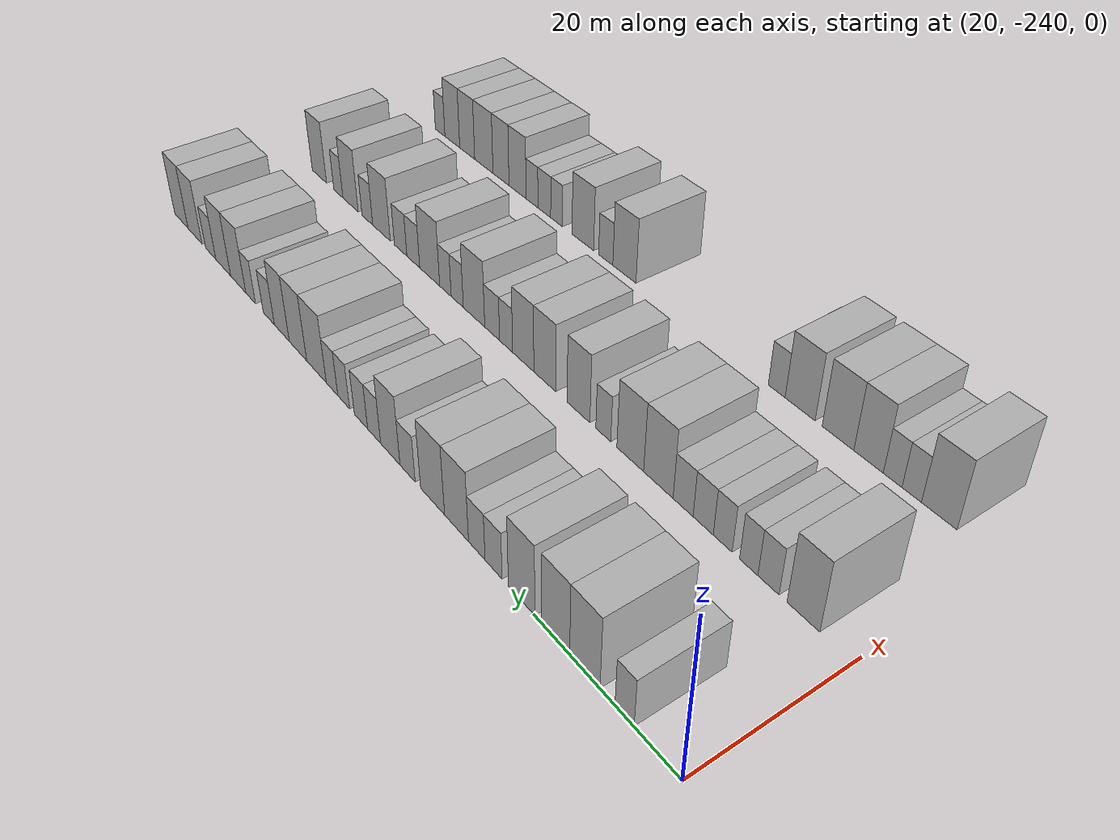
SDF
<sdf version="1.6">
 <world name="default">
  <model name="building_1">
   <static>1</static>
   <pose>25.0000 -232.7464 0 0.000000 0.000000 0.000000</pose>
   <link name="link">
    <pose>0 0 3.00 0 0 0</pose>
    <collision name="collision"><geometry><box><size>10.0000 2.5072 6.0000</size></box></geometry></collision>
    <visual name="visual">
     <cast_shadows>0</cast_shadows>
     <geometry><box><size>10.0000 2.5072 6.0000</size></box></geometry>
     <material>
      <script>
       <uri>model://HANNAS_wall/materials/scripts</uri>
       <uri>model://HANNAS_wall/materials/textures</uri>
       <name>vrc/HANNAS_wall</name>
      </script>
     </material>
    </visual>
   </link>
  </model>
  <model name="building_2">
   <static>1</static>
   <pose>25.0000 -227.3734 0 0.000000 0.000000 0.000000</pose>
   <link name="link">
    <pose>0 0 4.50 0 0 0</pose>
    <collision name="collision"><geometry><box><size>10.0000 4.2387 9.0000</size></box></geometry></collision>
    <visual name="visual">
     <cast_shadows>0</cast_shadows>
     <geometry><box><size>10.0000 4.2387 9.0000</size></box></geometry>
     <material>
      <script>
       <uri>model://HANNAS_wall/materials/scripts</uri>
       <uri>model://HANNAS_wall/materials/textures</uri>
       <name>vrc/HANNAS_wall</name>
      </script>
     </material>
    </visual>
   </link>
  </model>
  <model name="building_3">
   <static>1</static>
   <pose>25.0000 -223.1973 0 0.000000 0.000000 0.000000</pose>
   <link name="link">
    <pose>0 0 4.50 0 0 0</pose>
    <collision name="collision"><geometry><box><size>10.0000 4.1135 9.0000</size></box></geometry></collision>
    <visual name="visual">
     <cast_shadows>0</cast_shadows>
     <geometry><box><size>10.0000 4.1135 9.0000</size></box></geometry>
     <material>
      <script>
       <uri>model://HANNAS_wall/materials/scripts</uri>
       <uri>model://HANNAS_wall/materials/textures</uri>
       <name>vrc/HANNAS_wall</name>
      </script>
     </material>
    </visual>
   </link>
  </model>
  <model name="building_4">
   <static>1</static>
   <pose>25.0000 -218.0938 0 0.000000 0.000000 0.000000</pose>
   <link name="link">
    <pose>0 0 4.50 0 0 0</pose>
    <collision name="collision"><geometry><box><size>10.0000 4.0936 9.0000</size></box></geometry></collision>
    <visual name="visual">
     <cast_shadows>0</cast_shadows>
     <geometry><box><size>10.0000 4.0936 9.0000</size></box></geometry>
     <material>
      <script>
       <uri>model://HANNAS_wall/materials/scripts</uri>
       <uri>model://HANNAS_wall/materials/textures</uri>
       <name>vrc/HANNAS_wall</name>
      </script>
     </material>
    </visual>
   </link>
  </model>
  <model name="building_5">
   <static>1</static>
   <pose>25.0000 -213.6600 0 0.000000 0.000000 0.000000</pose>
   <link name="link">
    <pose>0 0 3.00 0 0 0</pose>
    <collision name="collision"><geometry><box><size>10.0000 2.7739 6.0000</size></box></geometry></collision>
    <visual name="visual">
     <cast_shadows>0</cast_shadows>
     <geometry><box><size>10.0000 2.7739 6.0000</size></box></geometry>
     <material>
      <script>
       <uri>model://HANNAS_wall/materials/scripts</uri>
       <uri>model://HANNAS_wall/materials/textures</uri>
       <name>vrc/HANNAS_wall</name>
      </script>
     </material>
    </visual>
   </link>
  </model>
  <model name="building_6">
   <static>1</static>
   <pose>25.0000 -210.8924 0 0.000000 0.000000 0.000000</pose>
   <link name="link">
    <pose>0 0 3.00 0 0 0</pose>
    <collision name="collision"><geometry><box><size>10.0000 2.7613 6.0000</size></box></geometry></collision>
    <visual name="visual">
     <cast_shadows>0</cast_shadows>
     <geometry><box><size>10.0000 2.7613 6.0000</size></box></geometry>
     <material>
      <script>
       <uri>model://HANNAS_wall/materials/scripts</uri>
       <uri>model://HANNAS_wall/materials/textures</uri>
       <name>vrc/HANNAS_wall</name>
      </script>
     </material>
    </visual>
   </link>
  </model>
  <model name="building_7">
   <static>1</static>
   <pose>25.0000 -207.4235 0 0.000000 0.000000 0.000000</pose>
   <link name="link">
    <pose>0 0 4.50 0 0 0</pose>
    <collision name="collision"><geometry><box><size>10.0000 4.1765 9.0000</size></box></geometry></collision>
    <visual name="visual">
     <cast_shadows>0</cast_shadows>
     <geometry><box><size>10.0000 4.1765 9.0000</size></box></geometry>
     <material>
      <script>
       <uri>model://HANNAS_wall/materials/scripts</uri>
       <uri>model://HANNAS_wall/materials/textures</uri>
       <name>vrc/HANNAS_wall</name>
      </script>
     </material>
    </visual>
   </link>
  </model>
  <model name="building_8">
   <static>1</static>
   <pose>25.0000 -203.1562 0 0.000000 0.000000 0.000000</pose>
   <link name="link">
    <pose>0 0 4.50 0 0 0</pose>
    <collision name="collision"><geometry><box><size>10.0000 4.3580 9.0000</size></box></geometry></collision>
    <visual name="visual">
     <cast_shadows>0</cast_shadows>
     <geometry><box><size>10.0000 4.3580 9.0000</size></box></geometry>
     <material>
      <script>
       <uri>model://HANNAS_wall/materials/scripts</uri>
       <uri>model://HANNAS_wall/materials/textures</uri>
       <name>vrc/HANNAS_wall</name>
      </script>
     </material>
    </visual>
   </link>
  </model>
  <model name="building_9">
   <static>1</static>
   <pose>25.0000 -198.5310 0 0.000000 0.000000 0.000000</pose>
   <link name="link">
    <pose>0 0 3.00 0 0 0</pose>
    <collision name="collision"><geometry><box><size>10.0000 2.8926 6.0000</size></box></geometry></collision>
    <visual name="visual">
     <cast_shadows>0</cast_shadows>
     <geometry><box><size>10.0000 2.8926 6.0000</size></box></geometry>
     <material>
      <script>
       <uri>model://HANNAS_wall/materials/scripts</uri>
       <uri>model://HANNAS_wall/materials/textures</uri>
       <name>vrc/HANNAS_wall</name>
      </script>
     </material>
    </visual>
   </link>
  </model>
  <model name="building_10">
   <static>1</static>
   <pose>25.0000 -195.1847 0 0.000000 0.000000 0.000000</pose>
   <link name="link">
    <pose>0 0 4.50 0 0 0</pose>
    <collision name="collision"><geometry><box><size>10.0000 3.8000 9.0000</size></box></geometry></collision>
    <visual name="visual">
     <cast_shadows>0</cast_shadows>
     <geometry><box><size>10.0000 3.8000 9.0000</size></box></geometry>
     <material>
      <script>
       <uri>model://HANNAS_wall/materials/scripts</uri>
       <uri>model://HANNAS_wall/materials/textures</uri>
       <name>vrc/HANNAS_wall</name>
      </script>
     </material>
    </visual>
   </link>
  </model>
  <model name="building_11">
   <static>1</static>
   <pose>25.0000 -191.9634 0 0.000000 0.000000 0.000000</pose>
   <link name="link">
    <pose>0 0 3.00 0 0 0</pose>
    <collision name="collision"><geometry><box><size>10.0000 2.6426 6.0000</size></box></geometry></collision>
    <visual name="visual">
     <cast_shadows>0</cast_shadows>
     <geometry><box><size>10.0000 2.6426 6.0000</size></box></geometry>
     <material>
      <script>
       <uri>model://HANNAS_wall/materials/scripts</uri>
       <uri>model://HANNAS_wall/materials/textures</uri>
       <name>vrc/HANNAS_wall</name>
      </script>
     </material>
    </visual>
   </link>
  </model>
  <model name="building_12">
   <static>1</static>
   <pose>25.0000 -189.2580 0 0.000000 0.000000 0.000000</pose>
   <link name="link">
    <pose>0 0 3.00 0 0 0</pose>
    <collision name="collision"><geometry><box><size>10.0000 2.7681 6.0000</size></box></geometry></collision>
    <visual name="visual">
     <cast_shadows>0</cast_shadows>
     <geometry><box><size>10.0000 2.7681 6.0000</size></box></geometry>
     <material>
      <script>
       <uri>model://HANNAS_wall/materials/scripts</uri>
       <uri>model://HANNAS_wall/materials/textures</uri>
       <name>vrc/HANNAS_wall</name>
      </script>
     </material>
    </visual>
   </link>
  </model>
  <model name="building_13">
   <static>1</static>
   <pose>25.0000 -185.5941 0 0.000000 0.000000 0.000000</pose>
   <link name="link">
    <pose>0 0 3.00 0 0 0</pose>
    <collision name="collision"><geometry><box><size>10.0000 2.5597 6.0000</size></box></geometry></collision>
    <visual name="visual">
     <cast_shadows>0</cast_shadows>
     <geometry><box><size>10.0000 2.5597 6.0000</size></box></geometry>
     <material>
      <script>
       <uri>model://HANNAS_wall/materials/scripts</uri>
       <uri>model://HANNAS_wall/materials/textures</uri>
       <name>vrc/HANNAS_wall</name>
      </script>
     </material>
    </visual>
   </link>
  </model>
  <model name="building_14">
   <static>1</static>
   <pose>25.0000 -183.0411 0 0.000000 0.000000 0.000000</pose>
   <link name="link">
    <pose>0 0 3.00 0 0 0</pose>
    <collision name="collision"><geometry><box><size>10.0000 2.5462 6.0000</size></box></geometry></collision>
    <visual name="visual">
     <cast_shadows>0</cast_shadows>
     <geometry><box><size>10.0000 2.5462 6.0000</size></box></geometry>
     <material>
      <script>
       <uri>model://HANNAS_wall/materials/scripts</uri>
       <uri>model://HANNAS_wall/materials/textures</uri>
       <name>vrc/HANNAS_wall</name>
      </script>
     </material>
    </visual>
   </link>
  </model>
  <model name="building_15">
   <static>1</static>
   <pose>25.0000 -179.5298 0 0.000000 0.000000 0.000000</pose>
   <link name="link">
    <pose>0 0 4.50 0 0 0</pose>
    <collision name="collision"><geometry><box><size>10.0000 4.4765 9.0000</size></box></geometry></collision>
    <visual name="visual">
     <cast_shadows>0</cast_shadows>
     <geometry><box><size>10.0000 4.4765 9.0000</size></box></geometry>
     <material>
      <script>
       <uri>model://HANNAS_wall/materials/scripts</uri>
       <uri>model://HANNAS_wall/materials/textures</uri>
       <name>vrc/HANNAS_wall</name>
      </script>
     </material>
    </visual>
   </link>
  </model>
  <model name="building_16">
   <static>1</static>
   <pose>25.0000 -175.2244 0 0.000000 0.000000 0.000000</pose>
   <link name="link">
    <pose>0 0 4.50 0 0 0</pose>
    <collision name="collision"><geometry><box><size>10.0000 4.1342 9.0000</size></box></geometry></collision>
    <visual name="visual">
     <cast_shadows>0</cast_shadows>
     <geometry><box><size>10.0000 4.1342 9.0000</size></box></geometry>
     <material>
      <script>
       <uri>model://HANNAS_wall/materials/scripts</uri>
       <uri>model://HANNAS_wall/materials/textures</uri>
       <name>vrc/HANNAS_wall</name>
      </script>
     </material>
    </visual>
   </link>
  </model>
  <model name="building_17">
   <static>1</static>
   <pose>25.0000 -171.3254 0 0.000000 0.000000 0.000000</pose>
   <link name="link">
    <pose>0 0 4.50 0 0 0</pose>
    <collision name="collision"><geometry><box><size>10.0000 3.6637 9.0000</size></box></geometry></collision>
    <visual name="visual">
     <cast_shadows>0</cast_shadows>
     <geometry><box><size>10.0000 3.6637 9.0000</size></box></geometry>
     <material>
      <script>
       <uri>model://HANNAS_wall/materials/scripts</uri>
       <uri>model://HANNAS_wall/materials/textures</uri>
       <name>vrc/HANNAS_wall</name>
      </script>
     </material>
    </visual>
   </link>
  </model>
  <model name="building_18">
   <static>1</static>
   <pose>25.0000 -168.0835 0 0.000000 0.000000 0.000000</pose>
   <link name="link">
    <pose>0 0 3.00 0 0 0</pose>
    <collision name="collision"><geometry><box><size>10.0000 2.8201 6.0000</size></box></geometry></collision>
    <visual name="visual">
     <cast_shadows>0</cast_shadows>
     <geometry><box><size>10.0000 2.8201 6.0000</size></box></geometry>
     <material>
      <script>
       <uri>model://HANNAS_wall/materials/scripts</uri>
       <uri>model://HANNAS_wall/materials/textures</uri>
       <name>vrc/HANNAS_wall</name>
      </script>
     </material>
    </visual>
   </link>
  </model>
  <model name="building_19">
   <static>1</static>
   <pose>25.0000 -163.3988 0 0.000000 0.000000 0.000000</pose>
   <link name="link">
    <pose>0 0 3.00 0 0 0</pose>
    <collision name="collision"><geometry><box><size>10.0000 2.5493 6.0000</size></box></geometry></collision>
    <visual name="visual">
     <cast_shadows>0</cast_shadows>
     <geometry><box><size>10.0000 2.5493 6.0000</size></box></geometry>
     <material>
      <script>
       <uri>model://HANNAS_wall/materials/scripts</uri>
       <uri>model://HANNAS_wall/materials/textures</uri>
       <name>vrc/HANNAS_wall</name>
      </script>
     </material>
    </visual>
   </link>
  </model>
  <model name="building_20">
   <static>1</static>
   <pose>25.0000 -160.0751 0 0.000000 0.000000 0.000000</pose>
   <link name="link">
    <pose>0 0 4.50 0 0 0</pose>
    <collision name="collision"><geometry><box><size>10.0000 4.0981 9.0000</size></box></geometry></collision>
    <visual name="visual">
     <cast_shadows>0</cast_shadows>
     <geometry><box><size>10.0000 4.0981 9.0000</size></box></geometry>
     <material>
      <script>
       <uri>model://HANNAS_wall/materials/scripts</uri>
       <uri>model://HANNAS_wall/materials/textures</uri>
       <name>vrc/HANNAS_wall</name>
      </script>
     </material>
    </visual>
   </link>
  </model>
  <model name="building_21">
   <static>1</static>
   <pose>25.0000 -155.9558 0 0.000000 0.000000 0.000000</pose>
   <link name="link">
    <pose>0 0 4.50 0 0 0</pose>
    <collision name="collision"><geometry><box><size>10.0000 4.1404 9.0000</size></box></geometry></collision>
    <visual name="visual">
     <cast_shadows>0</cast_shadows>
     <geometry><box><size>10.0000 4.1404 9.0000</size></box></geometry>
     <material>
      <script>
       <uri>model://HANNAS_wall/materials/scripts</uri>
       <uri>model://HANNAS_wall/materials/textures</uri>
       <name>vrc/HANNAS_wall</name>
      </script>
     </material>
    </visual>
   </link>
  </model>
  <model name="building_22">
   <static>1</static>
   <pose>25.0000 -152.3985 0 0.000000 0.000000 0.000000</pose>
   <link name="link">
    <pose>0 0 3.00 0 0 0</pose>
    <collision name="collision"><geometry><box><size>10.0000 2.9743 6.0000</size></box></geometry></collision>
    <visual name="visual">
     <cast_shadows>0</cast_shadows>
     <geometry><box><size>10.0000 2.9743 6.0000</size></box></geometry>
     <material>
      <script>
       <uri>model://HANNAS_wall/materials/scripts</uri>
       <uri>model://HANNAS_wall/materials/textures</uri>
       <name>vrc/HANNAS_wall</name>
      </script>
     </material>
    </visual>
   </link>
  </model>
  <model name="building_23">
   <static>1</static>
   <pose>25.0000 -147.8059 0 0.000000 0.000000 0.000000</pose>
   <link name="link">
    <pose>0 0 4.50 0 0 0</pose>
    <collision name="collision"><geometry><box><size>10.0000 4.2109 9.0000</size></box></geometry></collision>
    <visual name="visual">
     <cast_shadows>0</cast_shadows>
     <geometry><box><size>10.0000 4.2109 9.0000</size></box></geometry>
     <material>
      <script>
       <uri>model://HANNAS_wall/materials/scripts</uri>
       <uri>model://HANNAS_wall/materials/textures</uri>
       <name>vrc/HANNAS_wall</name>
      </script>
     </material>
    </visual>
   </link>
  </model>
  <model name="building_24">
   <static>1</static>
   <pose>25.0000 -143.6487 0 0.000000 0.000000 0.000000</pose>
   <link name="link">
    <pose>0 0 4.50 0 0 0</pose>
    <collision name="collision"><geometry><box><size>10.0000 4.1034 9.0000</size></box></geometry></collision>
    <visual name="visual">
     <cast_shadows>0</cast_shadows>
     <geometry><box><size>10.0000 4.1034 9.0000</size></box></geometry>
     <material>
      <script>
       <uri>model://HANNAS_wall/materials/scripts</uri>
       <uri>model://HANNAS_wall/materials/textures</uri>
       <name>vrc/HANNAS_wall</name>
      </script>
     </material>
    </visual>
   </link>
  </model>
  <model name="building_118">
   <static>1</static>
   <pose>44.0000 -233.9726 0 0.000000 0.000000 0.000000</pose>
   <link name="link">
    <pose>0 0 4.50 0 0 0</pose>
    <collision name="collision"><geometry><box><size>10.0000 4.0548 9.0000</size></box></geometry></collision>
    <visual name="visual">
     <cast_shadows>0</cast_shadows>
     <geometry><box><size>10.0000 4.0548 9.0000</size></box></geometry>
     <material>
      <script>
       <uri>model://HANNAS_wall/materials/scripts</uri>
       <uri>model://HANNAS_wall/materials/textures</uri>
       <name>vrc/HANNAS_wall</name>
      </script>
     </material>
    </visual>
   </link>
  </model>
  <model name="building_119">
   <static>1</static>
   <pose>44.0000 -229.5728 0 0.000000 0.000000 0.000000</pose>
   <link name="link">
    <pose>0 0 3.00 0 0 0</pose>
    <collision name="collision"><geometry><box><size>10.0000 2.7450 6.0000</size></box></geometry></collision>
    <visual name="visual">
     <cast_shadows>0</cast_shadows>
     <geometry><box><size>10.0000 2.7450 6.0000</size></box></geometry>
     <material>
      <script>
       <uri>model://HANNAS_wall/materials/scripts</uri>
       <uri>model://HANNAS_wall/materials/textures</uri>
       <name>vrc/HANNAS_wall</name>
      </script>
     </material>
    </visual>
   </link>
  </model>
  <model name="building_120">
   <static>1</static>
   <pose>44.0000 -226.9808 0 0.000000 0.000000 0.000000</pose>
   <link name="link">
    <pose>0 0 3.00 0 0 0</pose>
    <collision name="collision"><geometry><box><size>10.0000 2.4390 6.0000</size></box></geometry></collision>
    <visual name="visual">
     <cast_shadows>0</cast_shadows>
     <geometry><box><size>10.0000 2.4390 6.0000</size></box></geometry>
     <material>
      <script>
       <uri>model://HANNAS_wall/materials/scripts</uri>
       <uri>model://HANNAS_wall/materials/textures</uri>
       <name>vrc/HANNAS_wall</name>
      </script>
     </material>
    </visual>
   </link>
  </model>
  <model name="building_121">
   <static>1</static>
   <pose>44.0000 -223.4520 0 0.000000 0.000000 0.000000</pose>
   <link name="link">
    <pose>0 0 3.00 0 0 0</pose>
    <collision name="collision"><geometry><box><size>10.0000 2.6184 6.0000</size></box></geometry></collision>
    <visual name="visual">
     <cast_shadows>0</cast_shadows>
     <geometry><box><size>10.0000 2.6184 6.0000</size></box></geometry>
     <material>
      <script>
       <uri>model://HANNAS_wall/materials/scripts</uri>
       <uri>model://HANNAS_wall/materials/textures</uri>
       <name>vrc/HANNAS_wall</name>
      </script>
     </material>
    </visual>
   </link>
  </model>
  <model name="building_122">
   <static>1</static>
   <pose>44.0000 -220.7077 0 0.000000 0.000000 0.000000</pose>
   <link name="link">
    <pose>0 0 3.00 0 0 0</pose>
    <collision name="collision"><geometry><box><size>10.0000 2.8704 6.0000</size></box></geometry></collision>
    <visual name="visual">
     <cast_shadows>0</cast_shadows>
     <geometry><box><size>10.0000 2.8704 6.0000</size></box></geometry>
     <material>
      <script>
       <uri>model://HANNAS_wall/materials/scripts</uri>
       <uri>model://HANNAS_wall/materials/textures</uri>
       <name>vrc/HANNAS_wall</name>
      </script>
     </material>
    </visual>
   </link>
  </model>
  <model name="building_123">
   <static>1</static>
   <pose>44.0000 -217.8065 0 0.000000 0.000000 0.000000</pose>
   <link name="link">
    <pose>0 0 3.00 0 0 0</pose>
    <collision name="collision"><geometry><box><size>10.0000 2.9318 6.0000</size></box></geometry></collision>
    <visual name="visual">
     <cast_shadows>0</cast_shadows>
     <geometry><box><size>10.0000 2.9318 6.0000</size></box></geometry>
     <material>
      <script>
       <uri>model://HANNAS_wall/materials/scripts</uri>
       <uri>model://HANNAS_wall/materials/textures</uri>
       <name>vrc/HANNAS_wall</name>
      </script>
     </material>
    </visual>
   </link>
  </model>
  <model name="building_124">
   <static>1</static>
   <pose>44.0000 -214.0979 0 0.000000 0.000000 0.000000</pose>
   <link name="link">
    <pose>0 0 4.50 0 0 0</pose>
    <collision name="collision"><geometry><box><size>10.0000 4.4855 9.0000</size></box></geometry></collision>
    <visual name="visual">
     <cast_shadows>0</cast_shadows>
     <geometry><box><size>10.0000 4.4855 9.0000</size></box></geometry>
     <material>
      <script>
       <uri>model://HANNAS_wall/materials/scripts</uri>
       <uri>model://HANNAS_wall/materials/textures</uri>
       <name>vrc/HANNAS_wall</name>
      </script>
     </material>
    </visual>
   </link>
  </model>
  <model name="building_125">
   <static>1</static>
   <pose>44.0000 -209.7274 0 0.000000 0.000000 0.000000</pose>
   <link name="link">
    <pose>0 0 4.50 0 0 0</pose>
    <collision name="collision"><geometry><box><size>10.0000 4.2554 9.0000</size></box></geometry></collision>
    <visual name="visual">
     <cast_shadows>0</cast_shadows>
     <geometry><box><size>10.0000 4.2554 9.0000</size></box></geometry>
     <material>
      <script>
       <uri>model://HANNAS_wall/materials/scripts</uri>
       <uri>model://HANNAS_wall/materials/textures</uri>
       <name>vrc/HANNAS_wall</name>
      </script>
     </material>
    </visual>
   </link>
  </model>
  <model name="building_126">
   <static>1</static>
   <pose>44.0000 -205.3624 0 0.000000 0.000000 0.000000</pose>
   <link name="link">
    <pose>0 0 3.00 0 0 0</pose>
    <collision name="collision"><geometry><box><size>10.0000 2.4745 6.0000</size></box></geometry></collision>
    <visual name="visual">
     <cast_shadows>0</cast_shadows>
     <geometry><box><size>10.0000 2.4745 6.0000</size></box></geometry>
     <material>
      <script>
       <uri>model://HANNAS_wall/materials/scripts</uri>
       <uri>model://HANNAS_wall/materials/textures</uri>
       <name>vrc/HANNAS_wall</name>
      </script>
     </material>
    </visual>
   </link>
  </model>
  <model name="building_127">
   <static>1</static>
   <pose>44.0000 -201.1518 0 0.000000 0.000000 0.000000</pose>
   <link name="link">
    <pose>0 0 4.50 0 0 0</pose>
    <collision name="collision"><geometry><box><size>10.0000 3.9467 9.0000</size></box></geometry></collision>
    <visual name="visual">
     <cast_shadows>0</cast_shadows>
     <geometry><box><size>10.0000 3.9467 9.0000</size></box></geometry>
     <material>
      <script>
       <uri>model://HANNAS_wall/materials/scripts</uri>
       <uri>model://HANNAS_wall/materials/textures</uri>
       <name>vrc/HANNAS_wall</name>
      </script>
     </material>
    </visual>
   </link>
  </model>
  <model name="building_128">
   <static>1</static>
   <pose>44.0000 -195.1767 0 0.000000 0.000000 0.000000</pose>
   <link name="link">
    <pose>0 0 4.50 0 0 0</pose>
    <collision name="collision"><geometry><box><size>10.0000 4.0035 9.0000</size></box></geometry></collision>
    <visual name="visual">
     <cast_shadows>0</cast_shadows>
     <geometry><box><size>10.0000 4.0035 9.0000</size></box></geometry>
     <material>
      <script>
       <uri>model://HANNAS_wall/materials/scripts</uri>
       <uri>model://HANNAS_wall/materials/textures</uri>
       <name>vrc/HANNAS_wall</name>
      </script>
     </material>
    </visual>
   </link>
  </model>
  <model name="building_129">
   <static>1</static>
   <pose>44.0000 -191.1647 0 0.000000 0.000000 0.000000</pose>
   <link name="link">
    <pose>0 0 4.50 0 0 0</pose>
    <collision name="collision"><geometry><box><size>10.0000 4.0205 9.0000</size></box></geometry></collision>
    <visual name="visual">
     <cast_shadows>0</cast_shadows>
     <geometry><box><size>10.0000 4.0205 9.0000</size></box></geometry>
     <material>
      <script>
       <uri>model://HANNAS_wall/materials/scripts</uri>
       <uri>model://HANNAS_wall/materials/textures</uri>
       <name>vrc/HANNAS_wall</name>
      </script>
     </material>
    </visual>
   </link>
  </model>
  <model name="building_130">
   <static>1</static>
   <pose>44.0000 -187.8832 0 0.000000 0.000000 0.000000</pose>
   <link name="link">
    <pose>0 0 3.00 0 0 0</pose>
    <collision name="collision"><geometry><box><size>10.0000 2.5426 6.0000</size></box></geometry></collision>
    <visual name="visual">
     <cast_shadows>0</cast_shadows>
     <geometry><box><size>10.0000 2.5426 6.0000</size></box></geometry>
     <material>
      <script>
       <uri>model://HANNAS_wall/materials/scripts</uri>
       <uri>model://HANNAS_wall/materials/textures</uri>
       <name>vrc/HANNAS_wall</name>
      </script>
     </material>
    </visual>
   </link>
  </model>
  <model name="building_131">
   <static>1</static>
   <pose>44.0000 -185.1264 0 0.000000 0.000000 0.000000</pose>
   <link name="link">
    <pose>0 0 3.00 0 0 0</pose>
    <collision name="collision"><geometry><box><size>10.0000 2.9709 6.0000</size></box></geometry></collision>
    <visual name="visual">
     <cast_shadows>0</cast_shadows>
     <geometry><box><size>10.0000 2.9709 6.0000</size></box></geometry>
     <material>
      <script>
       <uri>model://HANNAS_wall/materials/scripts</uri>
       <uri>model://HANNAS_wall/materials/textures</uri>
       <name>vrc/HANNAS_wall</name>
      </script>
     </material>
    </visual>
   </link>
  </model>
  <model name="building_132">
   <static>1</static>
   <pose>44.0000 -181.4288 0 0.000000 0.000000 0.000000</pose>
   <link name="link">
    <pose>0 0 4.50 0 0 0</pose>
    <collision name="collision"><geometry><box><size>10.0000 4.4243 9.0000</size></box></geometry></collision>
    <visual name="visual">
     <cast_shadows>0</cast_shadows>
     <geometry><box><size>10.0000 4.4243 9.0000</size></box></geometry>
     <material>
      <script>
       <uri>model://HANNAS_wall/materials/scripts</uri>
       <uri>model://HANNAS_wall/materials/textures</uri>
       <name>vrc/HANNAS_wall</name>
      </script>
     </material>
    </visual>
   </link>
  </model>
  <model name="building_133">
   <static>1</static>
   <pose>44.0000 -177.9277 0 0.000000 0.000000 0.000000</pose>
   <link name="link">
    <pose>0 0 3.00 0 0 0</pose>
    <collision name="collision"><geometry><box><size>10.0000 2.5779 6.0000</size></box></geometry></collision>
    <visual name="visual">
     <cast_shadows>0</cast_shadows>
     <geometry><box><size>10.0000 2.5779 6.0000</size></box></geometry>
     <material>
      <script>
       <uri>model://HANNAS_wall/materials/scripts</uri>
       <uri>model://HANNAS_wall/materials/textures</uri>
       <name>vrc/HANNAS_wall</name>
      </script>
     </material>
    </visual>
   </link>
  </model>
  <model name="building_134">
   <static>1</static>
   <pose>44.0000 -175.3887 0 0.000000 0.000000 0.000000</pose>
   <link name="link">
    <pose>0 0 3.00 0 0 0</pose>
    <collision name="collision"><geometry><box><size>10.0000 2.5001 6.0000</size></box></geometry></collision>
    <visual name="visual">
     <cast_shadows>0</cast_shadows>
     <geometry><box><size>10.0000 2.5001 6.0000</size></box></geometry>
     <material>
      <script>
       <uri>model://HANNAS_wall/materials/scripts</uri>
       <uri>model://HANNAS_wall/materials/textures</uri>
       <name>vrc/HANNAS_wall</name>
      </script>
     </material>
    </visual>
   </link>
  </model>
  <model name="building_135">
   <static>1</static>
   <pose>44.0000 -171.9021 0 0.000000 0.000000 0.000000</pose>
   <link name="link">
    <pose>0 0 4.50 0 0 0</pose>
    <collision name="collision"><geometry><box><size>10.0000 4.4732 9.0000</size></box></geometry></collision>
    <visual name="visual">
     <cast_shadows>0</cast_shadows>
     <geometry><box><size>10.0000 4.4732 9.0000</size></box></geometry>
     <material>
      <script>
       <uri>model://HANNAS_wall/materials/scripts</uri>
       <uri>model://HANNAS_wall/materials/textures</uri>
       <name>vrc/HANNAS_wall</name>
      </script>
     </material>
    </visual>
   </link>
  </model>
  <model name="building_136">
   <static>1</static>
   <pose>44.0000 -168.1779 0 0.000000 0.000000 0.000000</pose>
   <link name="link">
    <pose>0 0 3.00 0 0 0</pose>
    <collision name="collision"><geometry><box><size>10.0000 2.9751 6.0000</size></box></geometry></collision>
    <visual name="visual">
     <cast_shadows>0</cast_shadows>
     <geometry><box><size>10.0000 2.9751 6.0000</size></box></geometry>
     <material>
      <script>
       <uri>model://HANNAS_wall/materials/scripts</uri>
       <uri>model://HANNAS_wall/materials/textures</uri>
       <name>vrc/HANNAS_wall</name>
      </script>
     </material>
    </visual>
   </link>
  </model>
  <model name="building_137">
   <static>1</static>
   <pose>44.0000 -165.2219 0 0.000000 0.000000 0.000000</pose>
   <link name="link">
    <pose>0 0 3.00 0 0 0</pose>
    <collision name="collision"><geometry><box><size>10.0000 2.9371 6.0000</size></box></geometry></collision>
    <visual name="visual">
     <cast_shadows>0</cast_shadows>
     <geometry><box><size>10.0000 2.9371 6.0000</size></box></geometry>
     <material>
      <script>
       <uri>model://HANNAS_wall/materials/scripts</uri>
       <uri>model://HANNAS_wall/materials/textures</uri>
       <name>vrc/HANNAS_wall</name>
      </script>
     </material>
    </visual>
   </link>
  </model>
  <model name="building_138">
   <static>1</static>
   <pose>44.0000 -160.5919 0 0.000000 0.000000 0.000000</pose>
   <link name="link">
    <pose>0 0 4.50 0 0 0</pose>
    <collision name="collision"><geometry><box><size>10.0000 4.3229 9.0000</size></box></geometry></collision>
    <visual name="visual">
     <cast_shadows>0</cast_shadows>
     <geometry><box><size>10.0000 4.3229 9.0000</size></box></geometry>
     <material>
      <script>
       <uri>model://HANNAS_wall/materials/scripts</uri>
       <uri>model://HANNAS_wall/materials/textures</uri>
       <name>vrc/HANNAS_wall</name>
      </script>
     </material>
    </visual>
   </link>
  </model>
  <model name="building_139">
   <static>1</static>
   <pose>44.0000 -157.0853 0 0.000000 0.000000 0.000000</pose>
   <link name="link">
    <pose>0 0 3.00 0 0 0</pose>
    <collision name="collision"><geometry><box><size>10.0000 2.6902 6.0000</size></box></geometry></collision>
    <visual name="visual">
     <cast_shadows>0</cast_shadows>
     <geometry><box><size>10.0000 2.6902 6.0000</size></box></geometry>
     <material>
      <script>
       <uri>model://HANNAS_wall/materials/scripts</uri>
       <uri>model://HANNAS_wall/materials/textures</uri>
       <name>vrc/HANNAS_wall</name>
      </script>
     </material>
    </visual>
   </link>
  </model>
  <model name="building_140">
   <static>1</static>
   <pose>44.0000 -152.7510 0 0.000000 0.000000 0.000000</pose>
   <link name="link">
    <pose>0 0 4.50 0 0 0</pose>
    <collision name="collision"><geometry><box><size>10.0000 3.9785 9.0000</size></box></geometry></collision>
    <visual name="visual">
     <cast_shadows>0</cast_shadows>
     <geometry><box><size>10.0000 3.9785 9.0000</size></box></geometry>
     <material>
      <script>
       <uri>model://HANNAS_wall/materials/scripts</uri>
       <uri>model://HANNAS_wall/materials/textures</uri>
       <name>vrc/HANNAS_wall</name>
      </script>
     </material>
    </visual>
   </link>
  </model>
  <model name="building_141">
   <static>1</static>
   <pose>44.0000 -149.5529 0 0.000000 0.000000 0.000000</pose>
   <link name="link">
    <pose>0 0 3.00 0 0 0</pose>
    <collision name="collision"><geometry><box><size>10.0000 2.4176 6.0000</size></box></geometry></collision>
    <visual name="visual">
     <cast_shadows>0</cast_shadows>
     <geometry><box><size>10.0000 2.4176 6.0000</size></box></geometry>
     <material>
      <script>
       <uri>model://HANNAS_wall/materials/scripts</uri>
       <uri>model://HANNAS_wall/materials/textures</uri>
       <name>vrc/HANNAS_wall</name>
      </script>
     </material>
    </visual>
   </link>
  </model>
  <model name="building_142">
   <static>1</static>
   <pose>44.0000 -144.3605 0 0.000000 0.000000 0.000000</pose>
   <link name="link">
    <pose>0 0 4.50 0 0 0</pose>
    <collision name="collision"><geometry><box><size>10.0000 3.9673 9.0000</size></box></geometry></collision>
    <visual name="visual">
     <cast_shadows>0</cast_shadows>
     <geometry><box><size>10.0000 3.9673 9.0000</size></box></geometry>
     <material>
      <script>
       <uri>model://HANNAS_wall/materials/scripts</uri>
       <uri>model://HANNAS_wall/materials/textures</uri>
       <name>vrc/HANNAS_wall</name>
      </script>
     </material>
    </visual>
   </link>
  </model>
  <model name="building_225">
   <static>1</static>
   <pose>63.0000 -232.8249 0 0.000000 0.000000 0.000000</pose>
   <link name="link">
    <pose>0 0 4.50 0 0 0</pose>
    <collision name="collision"><geometry><box><size>10.0000 4.3501 9.0000</size></box></geometry></collision>
    <visual name="visual">
     <cast_shadows>0</cast_shadows>
     <geometry><box><size>10.0000 4.3501 9.0000</size></box></geometry>
     <material>
      <script>
       <uri>model://HANNAS_wall/materials/scripts</uri>
       <uri>model://HANNAS_wall/materials/textures</uri>
       <name>vrc/HANNAS_wall</name>
      </script>
     </material>
    </visual>
   </link>
  </model>
  <model name="building_226">
   <static>1</static>
   <pose>63.0000 -229.4228 0 0.000000 0.000000 0.000000</pose>
   <link name="link">
    <pose>0 0 3.00 0 0 0</pose>
    <collision name="collision"><geometry><box><size>10.0000 2.4542 6.0000</size></box></geometry></collision>
    <visual name="visual">
     <cast_shadows>0</cast_shadows>
     <geometry><box><size>10.0000 2.4542 6.0000</size></box></geometry>
     <material>
      <script>
       <uri>model://HANNAS_wall/materials/scripts</uri>
       <uri>model://HANNAS_wall/materials/textures</uri>
       <name>vrc/HANNAS_wall</name>
      </script>
     </material>
    </visual>
   </link>
  </model>
  <model name="building_227">
   <static>1</static>
   <pose>63.0000 -226.9845 0 0.000000 0.000000 0.000000</pose>
   <link name="link">
    <pose>0 0 3.00 0 0 0</pose>
    <collision name="collision"><geometry><box><size>10.0000 2.4224 6.0000</size></box></geometry></collision>
    <visual name="visual">
     <cast_shadows>0</cast_shadows>
     <geometry><box><size>10.0000 2.4224 6.0000</size></box></geometry>
     <material>
      <script>
       <uri>model://HANNAS_wall/materials/scripts</uri>
       <uri>model://HANNAS_wall/materials/textures</uri>
       <name>vrc/HANNAS_wall</name>
      </script>
     </material>
    </visual>
   </link>
  </model>
  <model name="building_228">
   <static>1</static>
   <pose>63.0000 -223.8008 0 0.000000 0.000000 0.000000</pose>
   <link name="link">
    <pose>0 0 4.50 0 0 0</pose>
    <collision name="collision"><geometry><box><size>10.0000 3.9449 9.0000</size></box></geometry></collision>
    <visual name="visual">
     <cast_shadows>0</cast_shadows>
     <geometry><box><size>10.0000 3.9449 9.0000</size></box></geometry>
     <material>
      <script>
       <uri>model://HANNAS_wall/materials/scripts</uri>
       <uri>model://HANNAS_wall/materials/textures</uri>
       <name>vrc/HANNAS_wall</name>
      </script>
     </material>
    </visual>
   </link>
  </model>
  <model name="building_229">
   <static>1</static>
   <pose>63.0000 -219.6258 0 0.000000 0.000000 0.000000</pose>
   <link name="link">
    <pose>0 0 4.50 0 0 0</pose>
    <collision name="collision"><geometry><box><size>10.0000 4.4051 9.0000</size></box></geometry></collision>
    <visual name="visual">
     <cast_shadows>0</cast_shadows>
     <geometry><box><size>10.0000 4.4051 9.0000</size></box></geometry>
     <material>
      <script>
       <uri>model://HANNAS_wall/materials/scripts</uri>
       <uri>model://HANNAS_wall/materials/textures</uri>
       <name>vrc/HANNAS_wall</name>
      </script>
     </material>
    </visual>
   </link>
  </model>
  <model name="building_230">
   <static>1</static>
   <pose>63.0000 -214.2207 0 0.000000 0.000000 0.000000</pose>
   <link name="link">
    <pose>0 0 4.50 0 0 0</pose>
    <collision name="collision"><geometry><box><size>10.0000 4.4051 9.0000</size></box></geometry></collision>
    <visual name="visual">
     <cast_shadows>0</cast_shadows>
     <geometry><box><size>10.0000 4.4051 9.0000</size></box></geometry>
     <material>
      <script>
       <uri>model://HANNAS_wall/materials/scripts</uri>
       <uri>model://HANNAS_wall/materials/textures</uri>
       <name>vrc/HANNAS_wall</name>
      </script>
     </material>
    </visual>
   </link>
  </model>
  <model name="building_231">
   <static>1</static>
   <pose>63.0000 -210.7447 0 0.000000 0.000000 0.000000</pose>
   <link name="link">
    <pose>0 0 3.00 0 0 0</pose>
    <collision name="collision"><geometry><box><size>10.0000 2.5469 6.0000</size></box></geometry></collision>
    <visual name="visual">
     <cast_shadows>0</cast_shadows>
     <geometry><box><size>10.0000 2.5469 6.0000</size></box></geometry>
     <material>
      <script>
       <uri>model://HANNAS_wall/materials/scripts</uri>
       <uri>model://HANNAS_wall/materials/textures</uri>
       <name>vrc/HANNAS_wall</name>
      </script>
     </material>
    </visual>
   </link>
  </model>
  <model name="building_232">
   <static>1</static>
   <pose>63.0000 -184.8783 0 0.000000 0.000000 0.000000</pose>
   <link name="link">
    <pose>0 0 4.50 0 0 0</pose>
    <collision name="collision"><geometry><box><size>10.0000 4.3953 9.0000</size></box></geometry></collision>
    <visual name="visual">
     <cast_shadows>0</cast_shadows>
     <geometry><box><size>10.0000 4.3953 9.0000</size></box></geometry>
     <material>
      <script>
       <uri>model://HANNAS_wall/materials/scripts</uri>
       <uri>model://HANNAS_wall/materials/textures</uri>
       <name>vrc/HANNAS_wall</name>
      </script>
     </material>
    </visual>
   </link>
  </model>
  <model name="building_233">
   <static>1</static>
   <pose>63.0000 -181.2931 0 0.000000 0.000000 0.000000</pose>
   <link name="link">
    <pose>0 0 3.00 0 0 0</pose>
    <collision name="collision"><geometry><box><size>10.0000 2.7751 6.0000</size></box></geometry></collision>
    <visual name="visual">
     <cast_shadows>0</cast_shadows>
     <geometry><box><size>10.0000 2.7751 6.0000</size></box></geometry>
     <material>
      <script>
       <uri>model://HANNAS_wall/materials/scripts</uri>
       <uri>model://HANNAS_wall/materials/textures</uri>
       <name>vrc/HANNAS_wall</name>
      </script>
     </material>
    </visual>
   </link>
  </model>
  <model name="building_234">
   <static>1</static>
   <pose>63.0000 -176.7057 0 0.000000 0.000000 0.000000</pose>
   <link name="link">
    <pose>0 0 4.50 0 0 0</pose>
    <collision name="collision"><geometry><box><size>10.0000 4.3997 9.0000</size></box></geometry></collision>
    <visual name="visual">
     <cast_shadows>0</cast_shadows>
     <geometry><box><size>10.0000 4.3997 9.0000</size></box></geometry>
     <material>
      <script>
       <uri>model://HANNAS_wall/materials/scripts</uri>
       <uri>model://HANNAS_wall/materials/textures</uri>
       <name>vrc/HANNAS_wall</name>
      </script>
     </material>
    </visual>
   </link>
  </model>
  <model name="building_235">
   <static>1</static>
   <pose>63.0000 -171.2601 0 0.000000 0.000000 0.000000</pose>
   <link name="link">
    <pose>0 0 3.00 0 0 0</pose>
    <collision name="collision"><geometry><box><size>10.0000 2.4914 6.0000</size></box></geometry></collision>
    <visual name="visual">
     <cast_shadows>0</cast_shadows>
     <geometry><box><size>10.0000 2.4914 6.0000</size></box></geometry>
     <material>
      <script>
       <uri>model://HANNAS_wall/materials/scripts</uri>
       <uri>model://HANNAS_wall/materials/textures</uri>
       <name>vrc/HANNAS_wall</name>
      </script>
     </material>
    </visual>
   </link>
  </model>
  <model name="building_236">
   <static>1</static>
   <pose>63.0000 -168.6277 0 0.000000 0.000000 0.000000</pose>
   <link name="link">
    <pose>0 0 3.00 0 0 0</pose>
    <collision name="collision"><geometry><box><size>10.0000 2.7734 6.0000</size></box></geometry></collision>
    <visual name="visual">
     <cast_shadows>0</cast_shadows>
     <geometry><box><size>10.0000 2.7734 6.0000</size></box></geometry>
     <material>
      <script>
       <uri>model://HANNAS_wall/materials/scripts</uri>
       <uri>model://HANNAS_wall/materials/textures</uri>
       <name>vrc/HANNAS_wall</name>
      </script>
     </material>
    </visual>
   </link>
  </model>
  <model name="building_237">
   <static>1</static>
   <pose>63.0000 -165.9324 0 0.000000 0.000000 0.000000</pose>
   <link name="link">
    <pose>0 0 3.00 0 0 0</pose>
    <collision name="collision"><geometry><box><size>10.0000 2.6173 6.0000</size></box></geometry></collision>
    <visual name="visual">
     <cast_shadows>0</cast_shadows>
     <geometry><box><size>10.0000 2.6173 6.0000</size></box></geometry>
     <material>
      <script>
       <uri>model://HANNAS_wall/materials/scripts</uri>
       <uri>model://HANNAS_wall/materials/textures</uri>
       <name>vrc/HANNAS_wall</name>
      </script>
     </material>
    </visual>
   </link>
  </model>
  <model name="building_238">
   <static>1</static>
   <pose>63.0000 -162.6934 0 0.000000 0.000000 0.000000</pose>
   <link name="link">
    <pose>0 0 4.50 0 0 0</pose>
    <collision name="collision"><geometry><box><size>10.0000 3.8607 9.0000</size></box></geometry></collision>
    <visual name="visual">
     <cast_shadows>0</cast_shadows>
     <geometry><box><size>10.0000 3.8607 9.0000</size></box></geometry>
     <material>
      <script>
       <uri>model://HANNAS_wall/materials/scripts</uri>
       <uri>model://HANNAS_wall/materials/textures</uri>
       <name>vrc/HANNAS_wall</name>
      </script>
     </material>
    </visual>
   </link>
  </model>
  <model name="building_239">
   <static>1</static>
   <pose>63.0000 -158.8956 0 0.000000 0.000000 0.000000</pose>
   <link name="link">
    <pose>0 0 4.50 0 0 0</pose>
    <collision name="collision"><geometry><box><size>10.0000 3.7348 9.0000</size></box></geometry></collision>
    <visual name="visual">
     <cast_shadows>0</cast_shadows>
     <geometry><box><size>10.0000 3.7348 9.0000</size></box></geometry>
     <material>
      <script>
       <uri>model://HANNAS_wall/materials/scripts</uri>
       <uri>model://HANNAS_wall/materials/textures</uri>
       <name>vrc/HANNAS_wall</name>
      </script>
     </material>
    </visual>
   </link>
  </model>
  <model name="building_240">
   <static>1</static>
   <pose>63.0000 -154.8293 0 0.000000 0.000000 0.000000</pose>
   <link name="link">
    <pose>0 0 4.50 0 0 0</pose>
    <collision name="collision"><geometry><box><size>10.0000 4.3978 9.0000</size></box></geometry></collision>
    <visual name="visual">
     <cast_shadows>0</cast_shadows>
     <geometry><box><size>10.0000 4.3978 9.0000</size></box></geometry>
     <material>
      <script>
       <uri>model://HANNAS_wall/materials/scripts</uri>
       <uri>model://HANNAS_wall/materials/textures</uri>
       <name>vrc/HANNAS_wall</name>
      </script>
     </material>
    </visual>
   </link>
  </model>
  <model name="building_241">
   <static>1</static>
   <pose>63.0000 -150.7740 0 0.000000 0.000000 0.000000</pose>
   <link name="link">
    <pose>0 0 4.50 0 0 0</pose>
    <collision name="collision"><geometry><box><size>10.0000 3.7129 9.0000</size></box></geometry></collision>
    <visual name="visual">
     <cast_shadows>0</cast_shadows>
     <geometry><box><size>10.0000 3.7129 9.0000</size></box></geometry>
     <material>
      <script>
       <uri>model://HANNAS_wall/materials/scripts</uri>
       <uri>model://HANNAS_wall/materials/textures</uri>
       <name>vrc/HANNAS_wall</name>
      </script>
     </material>
    </visual>
   </link>
  </model>
  <model name="building_242">
   <static>1</static>
   <pose>63.0000 -147.0316 0 0.000000 0.000000 0.000000</pose>
   <link name="link">
    <pose>0 0 4.50 0 0 0</pose>
    <collision name="collision"><geometry><box><size>10.0000 3.7718 9.0000</size></box></geometry></collision>
    <visual name="visual">
     <cast_shadows>0</cast_shadows>
     <geometry><box><size>10.0000 3.7718 9.0000</size></box></geometry>
     <material>
      <script>
       <uri>model://HANNAS_wall/materials/scripts</uri>
       <uri>model://HANNAS_wall/materials/textures</uri>
       <name>vrc/HANNAS_wall</name>
      </script>
     </material>
    </visual>
   </link>
  </model>
  <model name="building_243">
   <static>1</static>
   <pose>63.0000 -143.9053 0 0.000000 0.000000 0.000000</pose>
   <link name="link">
    <pose>0 0 3.00 0 0 0</pose>
    <collision name="collision"><geometry><box><size>10.0000 2.4808 6.0000</size></box></geometry></collision>
    <visual name="visual">
     <cast_shadows>0</cast_shadows>
     <geometry><box><size>10.0000 2.4808 6.0000</size></box></geometry>
     <material>
      <script>
       <uri>model://HANNAS_wall/materials/scripts</uri>
       <uri>model://HANNAS_wall/materials/textures</uri>
       <name>vrc/HANNAS_wall</name>
      </script>
     </material>
    </visual>
   </link>
  </model>
 </world>
</sdf>
